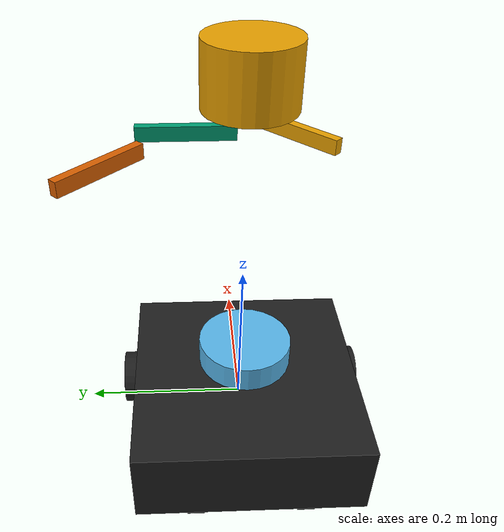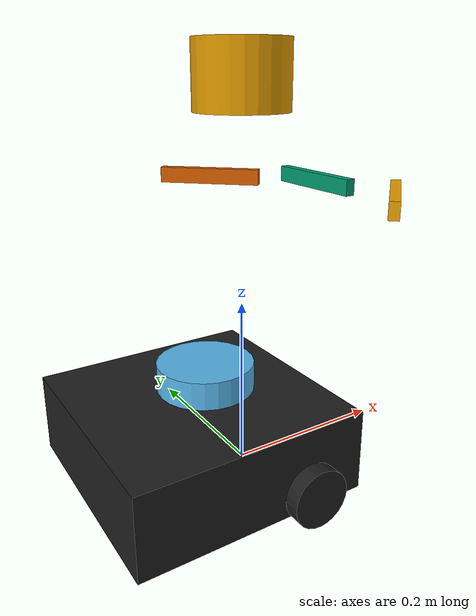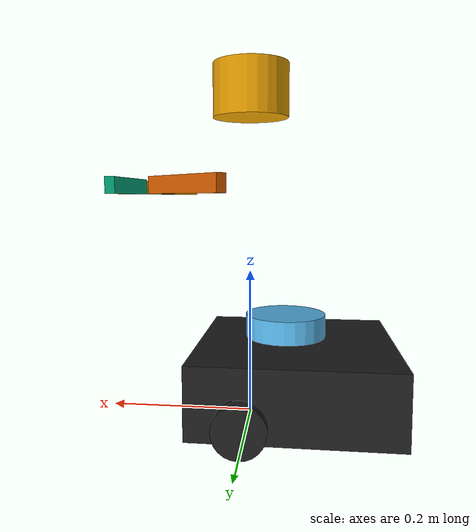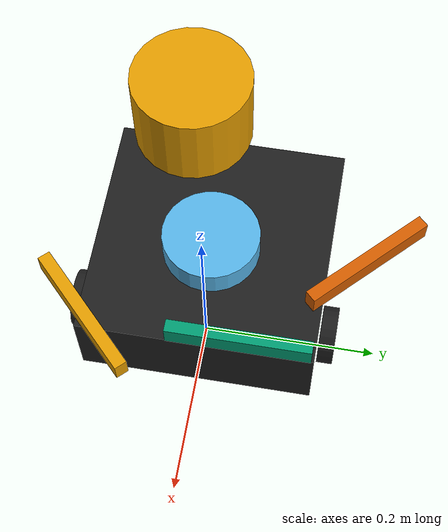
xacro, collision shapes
<?xml version="1.0" ?>
<robot name="turtlebot3_waffle_pi_cam" xmlns:xacro="http://ros.org/wiki/xacro">
  <xacro:include filename="$(find turtlebot3_description)/urdf/common_properties.xacro"/>
  <xacro:include filename="$(find culvert_sim)/urdf/turtlebot3_waffle_pi_cam.gazebo.xacro"/>
  <xacro:include filename="$(find velodyne_description)/urdf/VLP-16.urdf.xacro"/>

  <xacro:VLP-16 parent="base_link" name="velodyne" topic="/velodyne_points" hz="10" lasers="64" samples="880" gpu="false">
    <origin xyz="0 0 0.4" rpy="0 0 0" />
  </xacro:VLP-16>

  <xacro:property name="r200_cam_rgb_px" value="0.005"/>
  <xacro:property name="r200_cam_rgb_py" value="0.018"/>
  <xacro:property name="r200_cam_rgb_pz" value="0.013"/>
  <xacro:property name="r200_cam_depth_offset" value="0.01"/>

  <link name="base_footprint"/>

  <joint name="base_joint" type="fixed">
    <parent link="base_footprint"/>
    <child link="base_link" />
    <origin xyz="0 0 0.010" rpy="0 0 0"/>
  </joint>

  <link name="base_link">
    <visual>
      <origin xyz="-0.064 0 0.0" rpy="0 0 0"/>
      <geometry>
        <mesh filename="package://turtlebot3_description/meshes/bases/waffle_pi_base.stl" scale="0.001 0.001 0.001"/>
      </geometry>
      <material name="light_black"/>
    </visual>

    <collision>
      <origin xyz="-0.064 0 0.047" rpy="0 0 0"/>
      <geometry>
        <box size="0.266 0.266 0.094"/>
      </geometry>
    </collision>

    <inertial>
      <origin xyz="0 0 0" rpy="0 0 0"/>
      <mass value="1.3729096e+00"/>
      <inertia ixx="8.7002718e-03" ixy="-4.7576583e-05" ixz="1.1160499e-04"
               iyy="8.6195418e-03" iyz="-3.5422299e-06"
               izz="1.4612727e-02" />
    </inertial>
  </link>

  <joint name="wheel_left_joint" type="continuous">
    <parent link="base_link"/>
    <child link="wheel_left_link"/>
    <origin xyz="0.0 0.144 0.023" rpy="-1.57 0 0"/>
    <axis xyz="0 0 1"/>
  </joint>

  <link name="wheel_left_link">
    <visual>
      <origin xyz="0 0 0" rpy="1.57079632679  0 0"/>
      <geometry>
        <mesh filename="package://turtlebot3_description/meshes/wheels/left_tire.stl" scale="0.001 0.001 0.001"/>
      </geometry>
      <material name="dark"/>
    </visual>

    <collision>
      <origin xyz="0 0 0" rpy="0 0 0"/>
      <geometry>
        <cylinder length="0.018" radius="0.033"/>
      </geometry>
    </collision>

    <inertial>
      <origin xyz="0 0 0" />
      <mass value="2.8498940e-02" />
      <inertia ixx="1.1175580e-05" ixy="-4.2369783e-11" ixz="-5.9381719e-09"
               iyy="1.1192413e-05" iyz="-1.4400107e-11"
               izz="2.0712558e-05" />
      </inertial>
  </link>

  <joint name="wheel_right_joint" type="continuous">
    <parent link="base_link"/>
    <child link="wheel_right_link"/>
    <origin xyz="0.0 -0.144 0.023" rpy="-1.57079632679  0 0"/>
    <axis xyz="0 0 1"/>
  </joint>

  <link name="wheel_right_link">
    <visual>
      <origin xyz="0 0 0" rpy="1.57079632679  0 0"/>
      <geometry>
        <mesh filename="package://turtlebot3_description/meshes/wheels/right_tire.stl" scale="0.001 0.001 0.001"/>
      </geometry>
      <material name="dark"/>
    </visual>

    <collision>
      <origin xyz="0 0 0" rpy="0 0 0"/>
      <geometry>
        <cylinder length="0.018" radius="0.033"/>
      </geometry>
    </collision>

    <inertial>
      <origin xyz="0 0 0" />
      <mass value="2.8498940e-02" />
      <inertia ixx="1.1175580e-05" ixy="-4.2369783e-11" ixz="-5.9381719e-09"
               iyy="1.1192413e-05" iyz="-1.4400107e-11"
               izz="2.0712558e-05" />
      </inertial>
  </link>

  <joint name="caster_back_right_joint" type="fixed">
    <parent link="base_link"/>
    <child link="caster_back_right_link"/>
    <origin xyz="-0.177 -0.064 -0.004" rpy="-1.57079632679  0 0"/>
  </joint>

  <link name="caster_back_right_link">
    <collision>
      <origin xyz="0 0.001 0" rpy="0 0 0"/>
      <geometry>
        <box size="0.030 0.009 0.020"/>
      </geometry>
    </collision>

    <inertial>
      <origin xyz="0 0 0" />
      <mass value="0.005" />
      <inertia ixx="0.001" ixy="0.0" ixz="0.0"
               iyy="0.001" iyz="0.0"
               izz="0.001" />
    </inertial>
  </link>

  <joint name="caster_back_left_joint" type="fixed">
    <parent link="base_link"/>
    <child link="caster_back_left_link"/>
    <origin xyz="-0.177 0.064 -0.004" rpy="-1.57079632679  0 0"/>
  </joint>

  <link name="caster_back_left_link">
    <collision>
      <origin xyz="0 0.001 0" rpy="0 0 0"/>
      <geometry>
        <box size="0.030 0.009 0.020"/>
      </geometry>
    </collision>

    <inertial>
      <origin xyz="0 0 0" />
      <mass value="0.005" />
      <inertia ixx="0.001" ixy="0.0" ixz="0.0"
               iyy="0.001" iyz="0.0"
               izz="0.001" />
    </inertial>
  </link>

  <joint name="imu_joint" type="fixed">
    <parent link="base_link"/>
    <child link="imu_link"/>
    <origin xyz="0.0 0 0.068" rpy="0 0 0"/>
  </joint>

  <link name="imu_link"/>

  <joint name="scan_joint" type="fixed">
    <parent link="base_link"/>
    <child link="base_scan"/>
    <origin xyz="-0.064 0 0.122" rpy="0 0 0"/>
  </joint>

  <link name="base_scan">
    <visual>
      <origin xyz="0 0 0.0" rpy="0 0 0"/>
      <geometry>
        <mesh filename="package://turtlebot3_description/meshes/sensors/lds.stl" scale="0.001 0.001 0.001"/>
      </geometry>
      <material name="dark"/>
    </visual>

    <collision>
      <origin xyz="0.015 0 -0.0065" rpy="0 0 0"/>
      <geometry>
        <cylinder length="0.0315" radius="0.055"/>
      </geometry>
    </collision>

    <inertial>
      <mass value="0.114" />
      <origin xyz="0 0 0" />
      <inertia ixx="0.001" ixy="0.0" ixz="0.0"
               iyy="0.001" iyz="0.0"
               izz="0.001" />
    </inertial>
  </link>

  <!-- camera 0 -->

  <!-- camera 1 -->

  <!-- camera 2 -->

  <!-- rgbd 0 front -->
  <joint name="camera_0_joint" type="fixed">
    <origin xyz="0.15 0 0.3" rpy="0 0 0"/>
    <parent link="base_link"/>
    <child link="camera_0_link"/>
  </joint>

  <link name="camera_0_link">
    <visual>
     <origin xyz="0 0 0" rpy="1.57 0 1.57"/>
      <geometry>
       <mesh filename="package://turtlebot3_description/meshes/sensors/r200.dae" />
      </geometry>
    </visual>
    <collision>
      <origin xyz="0.003 0.065 0.007" rpy="0 0 0"/>
      <geometry>
        <box size="0.012 0.132 0.020"/>
      </geometry>
    </collision>

    <!-- This inertial field needs doesn't contain reliable data!! -->
  </link>

  <joint name="camera_0_rgb_joint" type="fixed">
    <origin xyz="${r200_cam_rgb_px} ${r200_cam_rgb_py} ${r200_cam_rgb_pz}" rpy="0 0 0"/>
    <parent link="camera_0_link"/>
    <child link="camera_0_rgb_frame"/>
  </joint>
  <link name="camera_0_rgb_frame"/>

  <joint name="camera_0_rgb_optical_joint" type="fixed">
    <origin xyz="0 0 0" rpy="-1.57 0 -1.57"/>
    <parent link="camera_0_rgb_frame"/>
    <child link="camera_0_rgb_optical_frame"/>
  </joint>
  <link name="camera_0_rgb_optical_frame"/>

  <!-- rgbd 1 left-->
  <joint name="camera_1_joint" type="fixed">
    <origin xyz="0.101 0.12 0.3" rpy="0 0 0.8"/>
    <parent link="base_link"/>
    <child link="camera_1_link"/>
  </joint>

  <link name="camera_1_link">
    <visual>
     <origin xyz="0 0 0" rpy="1.57 0 1.57"/>
      <geometry>
       <mesh filename="package://turtlebot3_description/meshes/sensors/r200.dae" />
      </geometry>
    </visual>
    <collision>
      <origin xyz="0.003 0.065 0.007" rpy="0 0 0"/>
      <geometry>
        <box size="0.012 0.132 0.020"/>
      </geometry>
    </collision>

    <!-- This inertial field needs doesn't contain reliable data!! -->
  </link>

  <joint name="camera_1_rgb_joint" type="fixed">
    <origin xyz="${r200_cam_rgb_px} ${r200_cam_rgb_py} ${r200_cam_rgb_pz}" rpy="0 0 0"/>
    <parent link="camera_1_link"/>
    <child link="camera_1_rgb_frame"/>
  </joint>
  <link name="camera_1_rgb_frame"/>

  <joint name="camera_1_rgb_optical_joint" type="fixed">
    <origin xyz="0 0 0" rpy="-1.57 0 -1.57"/>
    <parent link="camera_1_rgb_frame"/>
    <child link="camera_1_rgb_optical_frame"/>
  </joint>
  <link name="camera_1_rgb_optical_frame"/>

  <!-- rgbd 2 right-->
  <joint name="camera_2_joint" type="fixed">
    <origin xyz="0.101 -0.12 0.3" rpy="0 0 -0.8"/>
    <parent link="base_link"/>
    <child link="camera_2_link"/>
  </joint>

  <link name="camera_2_link">
    <visual>
     <origin xyz="0 0 0" rpy="1.57 0 1.57"/>
      <geometry>
       <mesh filename="package://turtlebot3_description/meshes/sensors/r200.dae" />
      </geometry>
    </visual>
    <collision>
      <origin xyz="0.003 0.065 0.007" rpy="0 0 0"/>
      <geometry>
        <box size="0.012 0.132 0.020"/>
      </geometry>
    </collision>

    <!-- This inertial field needs doesn't contain reliable data!! -->
  </link>

  <joint name="camera_2_rgb_joint" type="fixed">
    <origin xyz="${r200_cam_rgb_px} ${r200_cam_rgb_py} ${r200_cam_rgb_pz}" rpy="0 0 0"/>
    <parent link="camera_2_link"/>
    <child link="camera_2_rgb_frame"/>
  </joint>
  <link name="camera_2_rgb_frame"/>

  <joint name="camera_2_rgb_optical_joint" type="fixed">
    <origin xyz="0 0 0" rpy="-1.57 0 -1.57"/>
    <parent link="camera_2_rgb_frame"/>
    <child link="camera_2_rgb_optical_frame"/>
  </joint>
  <link name="camera_2_rgb_optical_frame"/>

</robot>

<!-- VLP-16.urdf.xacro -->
<robot xmlns:xacro="http://www.ros.org/wiki/xacro" name="VLP-16">
  <xacro:property name="M_PI" value="3.1415926535897931" />
  <xacro:macro name="VLP-16" params="*origin is_sim:=true parent:=base_link name:=velodyne tf_prefix:='' topic:=/velodyne_points organize_cloud:=false hz:=10 lasers:=16 samples:=1875 collision_range:=0.3 min_range:=0.0 max_range:=100.0 noise:=0.008 min_angle:=-${M_PI} max_angle:=${M_PI} gpu:=false">

    <joint name="${name}_base_mount_joint" type="fixed">
      <xacro:insert_block name="origin" />
      <parent link="${parent}"/>
      <child link="${name}_base_link"/>
    </joint>

    <link name="${name}_base_link">
      <inertial>
        <mass value="0.83"/>
        <origin xyz="0 0 0.03585"/>
        <inertia ixx="${(0.83 * (3.0*0.0516*0.0516 + 0.0717*0.0717)) / 12.0}" ixy="0" ixz="0"
          iyy="${(0.83 * (3.0*0.0516*0.0516 + 0.0717*0.0717)) / 12.0}" iyz="0"
          izz="${0.5 * 0.83 * (0.0516*0.0516)}"/>
      </inertial>
      <visual>
        <geometry>
          <mesh filename="package://velodyne_description/meshes/VLP16_base_1.dae" />
        </geometry>
      </visual>
      <visual>
        <geometry>
          <mesh filename="package://velodyne_description/meshes/VLP16_base_2.dae" />
        </geometry>
      </visual>
      <collision>
        <origin rpy="0 0 0" xyz="0 0 0.03585"/>
        <geometry>
          <cylinder radius="0.0516" length="0.0717"/>
        </geometry>
      </collision>
    </link>

    <joint name="${name}_base_scan_joint" type="fixed" >
      <origin xyz="0 0 0.0377" rpy="0 0 0" />
      <parent link="${name}_base_link" />
      <child link="${name}"/>
    </joint>

    <link name="${name}">
      <inertial>
        <mass value="0.01"/>
        <origin xyz="0 0 0"/>
        <inertia ixx="1e-7" ixy="0" ixz="0" iyy="1e-7" iyz="0" izz="1e-7"/>
      </inertial>
      <visual>
        <origin xyz="0 0 -0.0377" />
        <geometry>
          <mesh filename="package://velodyne_description/meshes/VLP16_scan.dae" />
        </geometry>
      </visual>
      <collision>
        <geometry>
          <sphere radius="0"/>
        </geometry>
      </collision>
    </link>

    <!-- Gazebo requires the velodyne_gazebo_plugins package -->
    <xacro:if value="${is_sim}">
        <gazebo reference="${name}">
            <xacro:if value="${gpu}">
                <sensor type="gpu_ray" name="${name}-VLP16">
                <pose>0 0 0 0 0 0</pose>
                <visualize>false</visualize>
                <update_rate>${hz}</update_rate>
                <ray>
                    <scan>
                    <horizontal>
                        <samples>${samples}</samples>
                        <resolution>1</resolution>
                        <min_angle>${min_angle}</min_angle>
                        <max_angle>${max_angle}</max_angle>
                    </horizontal>
                    <vertical>
                        <samples>${lasers}</samples>
                        <resolution>1</resolution>
                        <min_angle>-${15.0*M_PI/180.0}</min_angle>
                        <max_angle> ${15.0*M_PI/180.0}</max_angle>
                    </vertical>
                    </scan>
                    <range>
                    <min>${collision_range}</min>
                    <max>${max_range+1}</max>
                    <resolution>0.001</resolution>
                    </range>
                    <noise>
                    <type>gaussian</type>
                    <mean>0.0</mean>
                    <stddev>0.0</stddev>
                    </noise>
                </ray>
                <plugin name="gazebo_ros_laser_controller" filename="libgazebo_ros_velodyne_laser.so">
                    <ros>
                    <namespace>/${name}</namespace>
                    <remapping>~/out:=${topic}</remapping>
                    </ros>
                    <tf_prefix>${tf_prefix}</tf_prefix>
                    <frame_name>${name}</frame_name>
                    <organize_cloud>${organize_cloud}</organize_cloud>
                    <min_range>${min_range}</min_range>
                    <max_range>${max_range}</max_range>
                    <gaussian_noise>${noise}</gaussian_noise>
                </plugin>
                </sensor>
            </xacro:if>
            <xacro:unless value="${gpu}">
                <sensor type="ray" name="${name}-VLP16">
                <pose>0 0 0 0 0 0</pose>
                <visualize>false</visualize>
                <update_rate>${hz}</update_rate>
                <ray>
                    <scan>
                    <horizontal>
                        <samples>${samples}</samples>
                        <resolution>1</resolution>
                        <min_angle>${min_angle}</min_angle>
                        <max_angle>${max_angle}</max_angle>
                    </horizontal>
                    <vertical>
                        <samples>${lasers}</samples>
                        <resolution>1</resolution>
                        <min_angle>-${15.0*M_PI/180.0}</min_angle>
                        <max_angle> ${15.0*M_PI/180.0}</max_angle>
                    </vertical>
                    </scan>
                    <range>
                    <min>${collision_range}</min>
                    <max>${max_range+1}</max>
                    <resolution>0.001</resolution>
                    </range>
                    <noise>
                    <type>gaussian</type>
                    <mean>0.0</mean>
                    <stddev>0.0</stddev>
                    </noise>
                </ray>
                <plugin name="gazebo_ros_laser_controller" filename="libgazebo_ros_velodyne_laser.so">
                    <ros>
                    <namespace>/${name}</namespace>
                    <remapping>~/out:=${topic}</remapping>
                    </ros>
                    <tf_prefix>${tf_prefix}</tf_prefix>
                    <frame_name>${name}</frame_name>
                    <organize_cloud>${organize_cloud}</organize_cloud>
                    <min_range>${min_range}</min_range>
                    <max_range>${max_range}</max_range>
                    <gaussian_noise>${noise}</gaussian_noise>
                </plugin>
                </sensor>
            </xacro:unless>
        </gazebo>
    </xacro:if>

  </xacro:macro>
</robot>
